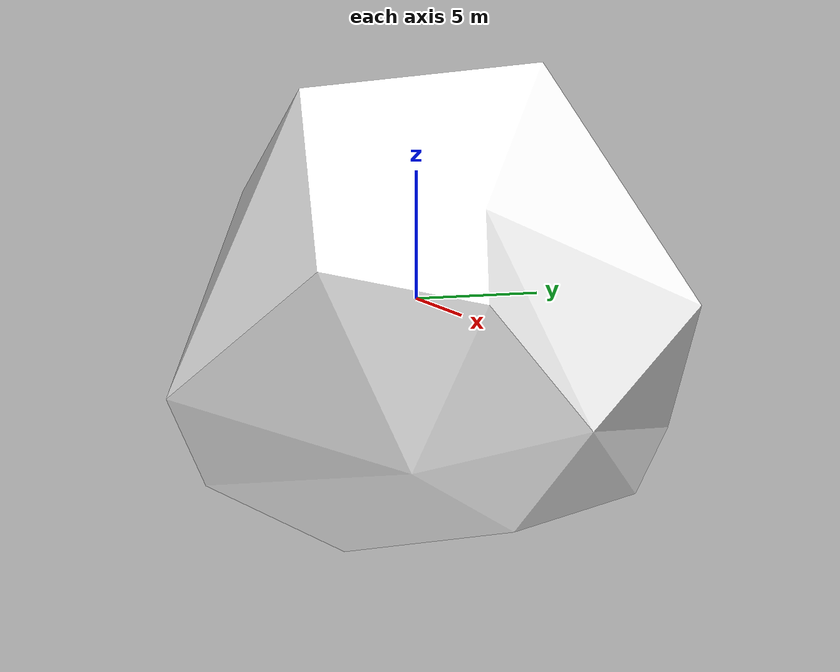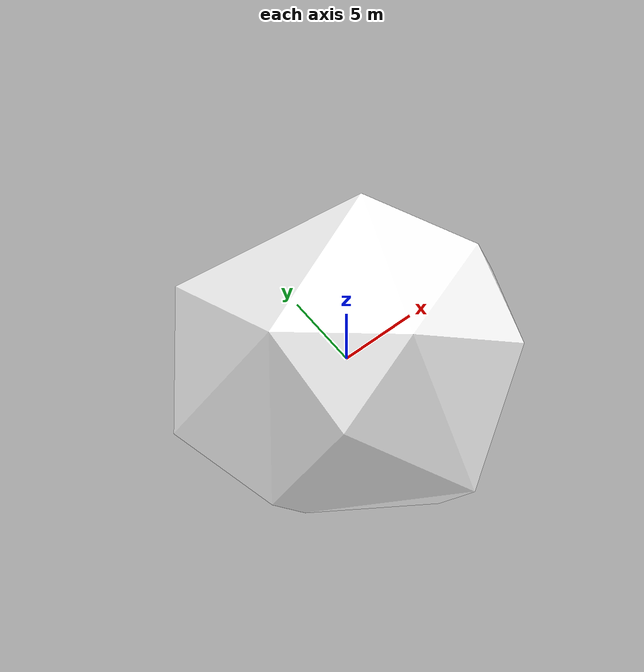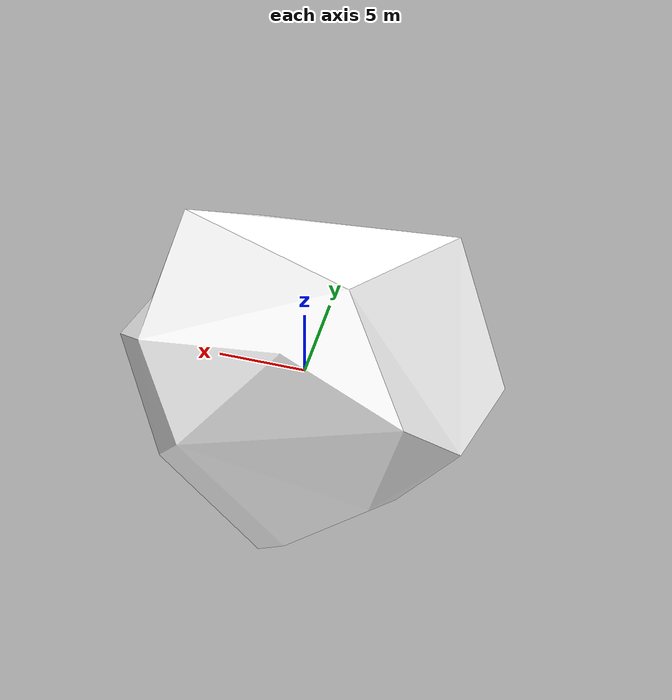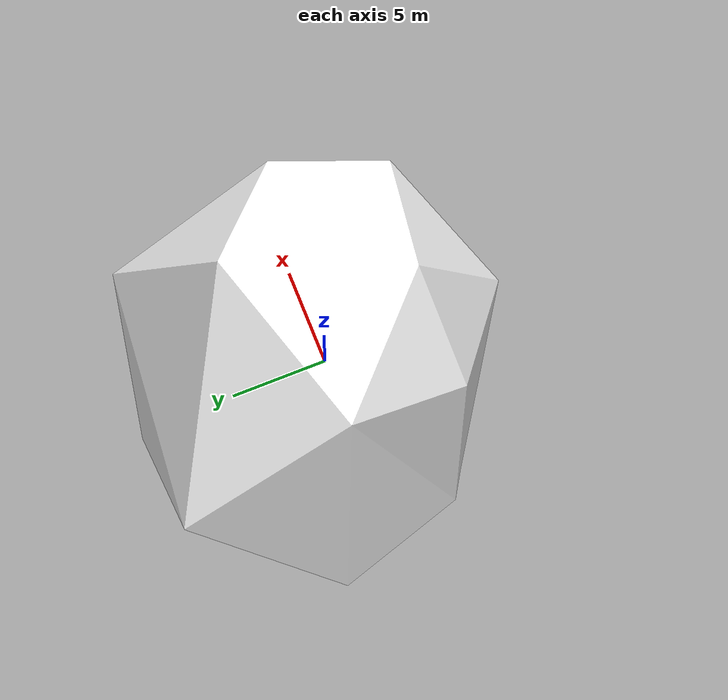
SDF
<?xml version="1.0" ?>
<sdf version="1.6">
  <model name="falling_rock3">
    <link name="base_link">
      <inertial>
        <pose>0.018197 0.019887 -0.018097 0 0 0</pose>
        <mass>195.308</mass>
        <inertia>
          <ixx>6.48</ixx>
          <ixy>0.224</ixy>
          <ixz>-0.32</ixz>
          <iyy>6.448</iyy>
          <iyz>0.094</iyz>
          <izz>6.604</izz>
        </inertia>
      </inertial>
      <collision name="collision">
        <geometry>
          <mesh>
            <uri>meshes/FallingRock03_Collider.dae</uri>
          </mesh>
        </geometry>
      </collision>

      <visual name="visual">
        <geometry>
          <mesh>
            <uri>meshes/FallingRock03.dae</uri>
          </mesh>
        </geometry>
        <material>
          <diffuse>1.0 1.0 1.0</diffuse>
          <specular>1.0 1.0 1.0</specular>
          <pbr>
            <metal>
              <albedo_map>model://falling_rock3/materials/textures/FallingRocks_Albedo.jpg</albedo_map>
              <normal_map>model://falling_rock3/materials/textures/FallingRocks_Normal.jpg</normal_map>
              <roughness_map>model://falling_rock3/materials/textures/FallingRocks_Roughness.jpg</roughness_map>
            </metal>
          </pbr>
          <!-- fallback to script if no PBR support-->
          <script>
              <uri>model://falling_rock3/materials/scripts</uri>
              <uri>model://falling_rock3/materials/textures</uri>
              <name>FallingRocks/FallingRocks_Diffuse</name>
          </script>
        </material>
      </visual>
    </link>
  </model>
</sdf>
